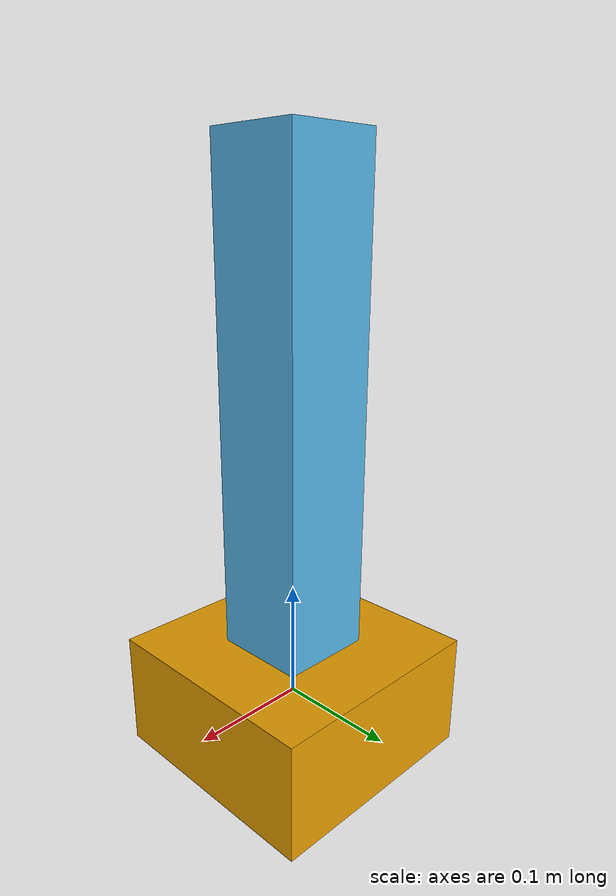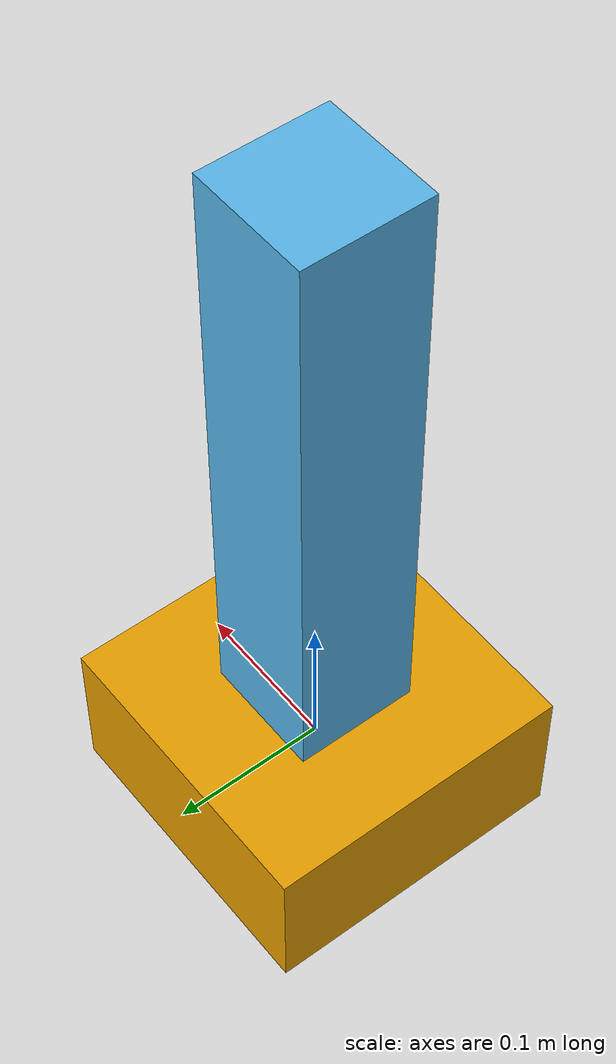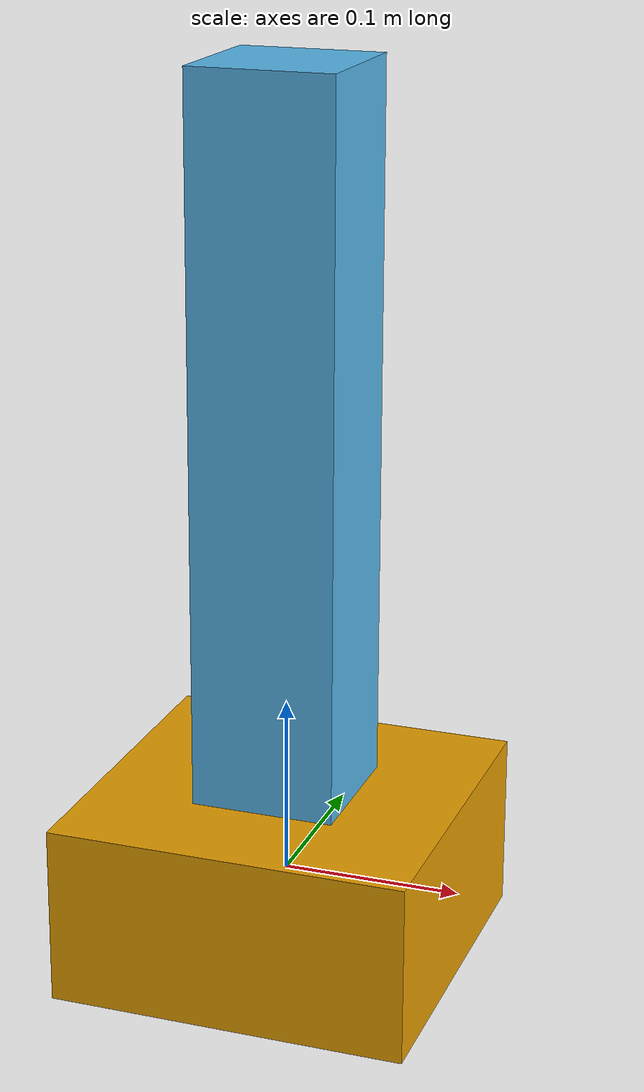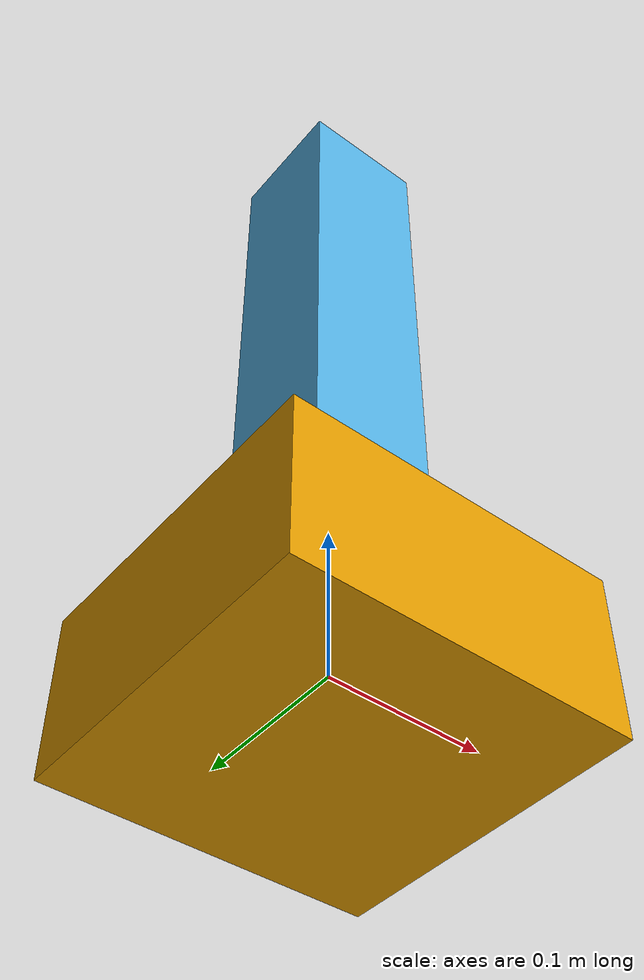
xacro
<?xml version="1.0"?>
<robot xmlns:xacro="http://www.ros.org/wiki/xacro" name="prefixed_arm">
  <xacro:arg name="prefix" default="robot1_"/>
  <xacro:property name="prefix" value="$(arg prefix)"/>

  <link name="${prefix}base_link">
    <visual>
      <geometry><box size="0.2 0.2 0.1"/></geometry>
    </visual>
  </link>

  <link name="${prefix}arm_link">
    <visual>
      <origin xyz="0 0 0.2"/>
      <geometry><box size="0.08 0.08 0.4"/></geometry>
    </visual>
  </link>

  <joint name="${prefix}arm_joint" type="revolute">
    <parent link="${prefix}base_link"/>
    <child link="${prefix}arm_link"/>
    <origin xyz="0 0 0.05"/>
    <axis xyz="0 1 0"/>
    <limit lower="-1.57" upper="1.57" effort="5.0" velocity="1.0"/>
  </joint>
</robot>
